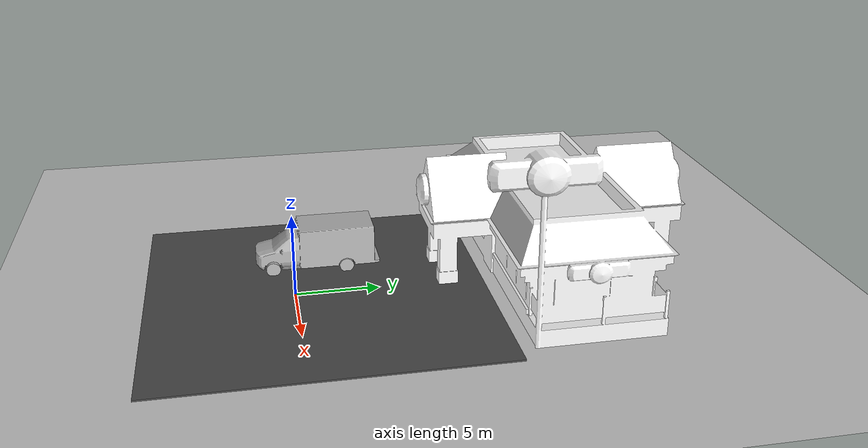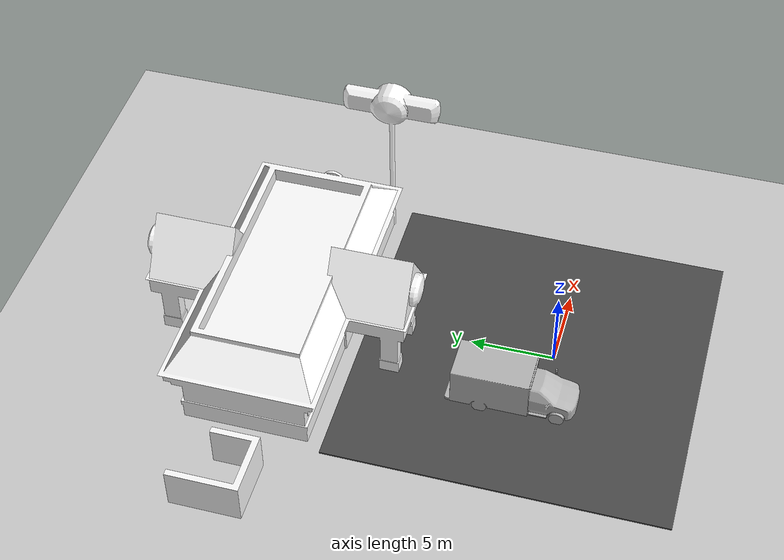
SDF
<sdf version="1.6">
 <world name="default">
  <light name="sun" type="directional">
   <pose>0 0 10 0 -0 0</pose>
   <diffuse>0.8 0.8 0.8 1</diffuse>
   <specular>0.2 0.2 0.2 1</specular>
   <attenuation>
    <range>1000</range>
    <constant>0.9</constant>
    <linear>0.01</linear>
    <quadratic>0.001</quadratic>
   </attenuation>
   <direction>-0.5 0.1 -0.9</direction>
  </light>
  <model name="ground_plane">
   <static>1</static>
   <link name="link">
    <collision name="collision">
     <geometry><plane><normal>0 0 1</normal><size>100 100</size></plane></geometry>
     <surface><friction><ode><mu>100</mu><mu2>50</mu2></ode></friction></surface>
    </collision>
    <visual name="visual">
     <cast_shadows>0</cast_shadows>
     <geometry><plane><normal>0 0 1</normal><size>100 100</size></plane></geometry>
     <material>
      <script><uri>file://media/materials/scripts/gazebo.material</uri><name>Gazebo/Grey</name></script>
     </material>
    </visual>
   </link>
  </model>
  <gravity>0 0 -9.8</gravity>
  <magnetic_field>6e-06 2.3e-05 -4.2e-05</magnetic_field>
  <atmosphere type="adiabatic"/>
  <physics name="default_physics" default="0" type="ode">
   <max_step_size>0.001</max_step_size>
   <real_time_factor>1</real_time_factor>
   <real_time_update_rate>1000</real_time_update_rate>
  </physics>
  <scene><ambient>0.4 0.4 0.4 1</ambient><background>0.7 0.7 0.7 1</background><shadows>1</shadows></scene>
  <spherical_coordinates>
   <surface_model>EARTH_WGS84</surface_model>
   <latitude_deg>0</latitude_deg>
   <longitude_deg>0</longitude_deg>
   <elevation>0</elevation>
   <heading_deg>0</heading_deg>
  </spherical_coordinates>
  <model name="ambulance">
   <static>1</static>
   <link name="link">
    <collision name="collision">
     <geometry>
      <mesh><scale>0.0254 0.0254 0.0254</scale><uri>model://ambulance/meshes/ambulance.obj</uri></mesh>
     </geometry>
    </collision>
    <visual name="visual">
     <geometry>
      <mesh><scale>0.0254 0.0254 0.0254</scale><uri>model://ambulance/meshes/ambulance.obj</uri></mesh>
     </geometry>
    </visual>
   </link>
   <pose>-3.73545 1.7356 0 0 -0 0</pose>
  </model>
  <model name="Fast Food">
   <static>1</static>
   <link name="link">
    <pose>0 0 3.15931 0 -0 0</pose>
    <collision name="collision">
     <geometry><mesh><scale>3 3 2</scale><uri>model://fast_food/meshes/fast_food.dae</uri></mesh></geometry>
    </collision>
    <visual name="visual">
     <geometry><mesh><scale>3 3 2</scale><uri>model://fast_food/meshes/fast_food.dae</uri></mesh></geometry>
     <material>
      <script>
       <uri>model://fast_food/materials/scripts</uri>
       <uri>model://fast_food/materials/textures</uri>
       <name>FastFood/Diffuse</name>
      </script>
      <shader type="normal_map_tangent_space"><normal_map>FastFood_Normal.png</normal_map></shader>
     </material>
    </visual>
   </link>
   <pose>-1.55624 15.8563 0 0 -0 0</pose>
  </model>
  <model name="asphalt_plane">
   <static>1</static>
   <link name="link">
    <collision name="collision"><geometry><box><size>20 20 0.1</size></box></geometry></collision>
    <visual name="visual">
     <cast_shadows>0</cast_shadows>
     <geometry><box><size>20 20 0.1</size></box></geometry>
     <material>
      <script>
       <uri>model://asphalt_plane/materials/scripts</uri>
       <uri>model://asphalt_plane/materials/textures</uri>
       <name>vrc/asphalt</name>
      </script>
     </material>
    </visual>
   </link>
   <pose>-0.305292 1.30377 0 0 -0 0</pose>
  </model>
 </world>
</sdf>
